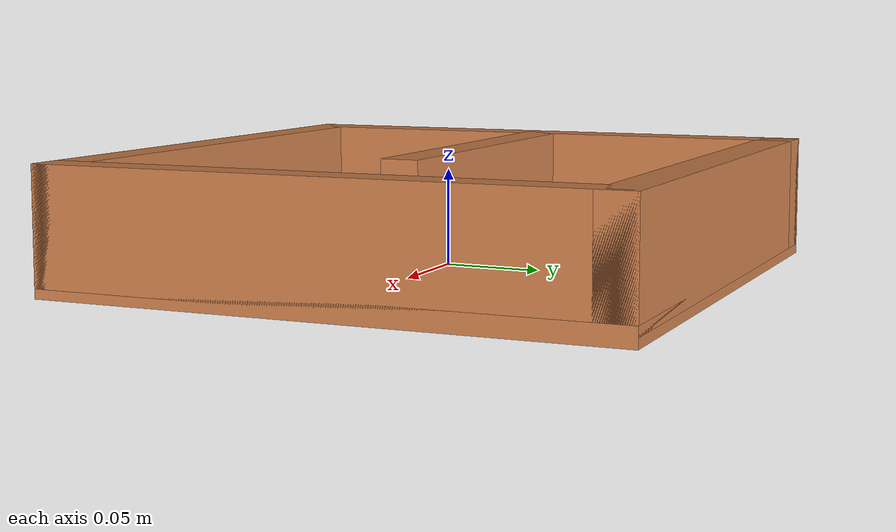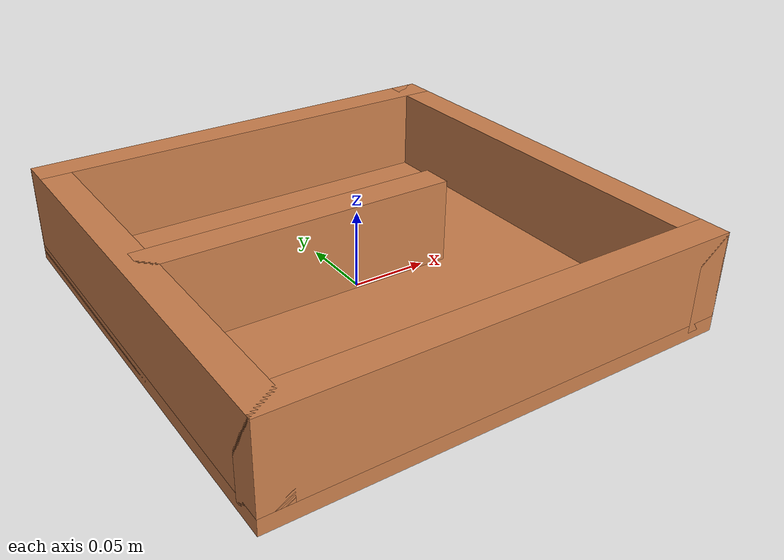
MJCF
<mujoco model="maze">
    <asset>
        <material name="wall_mat" rgba="0.8 0.5 0.3 1" shininess="0.1"/>
    </asset>
    <worldbody>
        <!-- 外层 Wrapper -->
        <body name="root_wrapper" pos="0 0 0">

            <!-- 内层 object (Robosuite 认这个名字) -->
            <body name="object" pos="0 0 0">
                <!-- 关键修改：所有的 geom 都加上了 group="0" -->

                <!-- 底板 -->
                <geom name="floor" type="box" group="0" size="0.15 0.15 0.005" material="wall_mat" pos="0 0 0"/>

                <!-- 四周墙壁 -->
                <geom name="w1" type="box" group="0" size="0.15 0.01 0.03" pos="0 0.14 0.03" material="wall_mat"/>
                <geom name="w2" type="box" group="0" size="0.15 0.01 0.03" pos="0 -0.14 0.03" material="wall_mat"/>
                <geom name="w3" type="box" group="0" size="0.01 0.15 0.03" pos="-0.14 0 0.03" material="wall_mat"/>
                <geom name="w4" type="box" group="0" size="0.01 0.15 0.03" pos="0.14 0 0.03" material="wall_mat"/>

                <!-- 内部障碍墙 -->
                <geom name="w_mid" type="box" group="0" size="0.10 0.01 0.03" pos="-0.04 0 0.03" material="wall_mat"/>
            </body>

        </body>
    </worldbody>
</mujoco>
